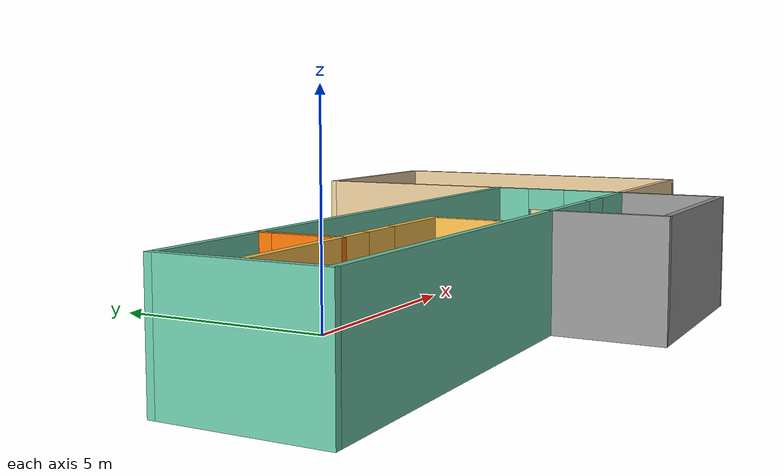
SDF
<?xml version='1.0'?>
<sdf version='1.7'>
  <model name='building'>
    <pose>2.715 -1.21881 0 0 -0 0</pose>
    <link name='Wall_0'>
      <collision name='Wall_0_Collision'>
        <geometry>
          <box>
            <size>3.25 0.15 2.5</size>
          </box>
        </geometry>
        <pose>0 0 1.25 0 -0 0</pose>
      </collision>
      <visual name='Wall_0_Visual'>
        <pose>0 0 1.25 0 -0 0</pose>
        <geometry>
          <box>
            <size>3.25 0.15 2.5</size>
          </box>
        </geometry>
        <material>
          <script>
            <uri>file://media/materials/scripts/gazebo.material</uri>
            <name>Gazebo/Grey</name>
          </script>
          <ambient>0.435294 0.796078 0.67451 1</ambient>
        </material>
        <meta>
          <layer>0</layer>
        </meta>
      </visual>
      <pose>-8.725 -1.21119 0 0 -0 -1.5708</pose>
    </link>
    <link name='Wall_1'>
      <pose>-2.3 -2.76119 0 0 -0 0</pose>
      <visual name='Wall_1_Visual_0'>
        <pose>-1.26149 0 1.25 0 -0 0</pose>
        <geometry>
          <box>
            <size>10.477 0.15 2.5</size>
          </box>
        </geometry>
        <material>
          <script>
            <uri>file://media/materials/scripts/gazebo.material</uri>
            <name>Gazebo/Grey</name>
          </script>
          <ambient>0.435294 0.796078 0.67451 1</ambient>
        </material>
        <meta>
          <layer>0</layer>
        </meta>
      </visual>
      <collision name='Wall_1_Collision_0'>
        <geometry>
          <box>
            <size>10.477 0.15 2.5</size>
          </box>
        </geometry>
        <pose>-1.26149 0 1.25 0 -0 0</pose>
      </collision>
      <visual name='Wall_1_Visual_1'>
        <pose>5.68851 0 1.25 0 -0 0</pose>
        <geometry>
          <box>
            <size>1.62298 0.15 2.5</size>
          </box>
        </geometry>
        <material>
          <script>
            <uri>file://media/materials/scripts/gazebo.material</uri>
            <name>Gazebo/Grey</name>
          </script>
          <ambient>0.435294 0.796078 0.67451 1</ambient>
        </material>
        <meta>
          <layer>0</layer>
        </meta>
      </visual>
      <collision name='Wall_1_Collision_1'>
        <geometry>
          <box>
            <size>1.62298 0.15 2.5</size>
          </box>
        </geometry>
        <pose>5.68851 0 1.25 0 -0 0</pose>
      </collision>
      <visual name='Wall_1_Visual_2'>
        <pose>4.42701 0 2.25 0 -0 0</pose>
        <geometry>
          <box>
            <size>0.9 0.15 0.5</size>
          </box>
        </geometry>
        <material>
          <script>
            <uri>file://media/materials/scripts/gazebo.material</uri>
            <name>Gazebo/Grey</name>
          </script>
          <ambient>0.435294 0.796078 0.67451 1</ambient>
        </material>
        <meta>
          <layer>0</layer>
        </meta>
      </visual>
      <collision name='Wall_1_Collision_2'>
        <geometry>
          <box>
            <size>0.9 0.15 0.5</size>
          </box>
        </geometry>
        <pose>4.42701 0 2.25 0 -0 0</pose>
      </collision>
    </link>
    <link name='Wall_10'>
      <pose>-4.4 -1.26119 0 0 -0 0</pose>
      <visual name='Wall_10_Visual_0'>
        <pose>-1.3125 0 1.25 0 -0 0</pose>
        <geometry>
          <box>
            <size>0.875 0.15 2.5</size>
          </box>
        </geometry>
        <material>
          <script>
            <uri>file://media/materials/scripts/gazebo.material</uri>
            <name>Gazebo/Grey</name>
          </script>
          <ambient>1 0.764706 0.305882 1</ambient>
        </material>
        <meta>
          <layer>0</layer>
        </meta>
      </visual>
      <collision name='Wall_10_Collision_0'>
        <geometry>
          <box>
            <size>0.875 0.15 2.5</size>
          </box>
        </geometry>
        <pose>-1.3125 0 1.25 0 -0 0</pose>
      </collision>
      <visual name='Wall_10_Visual_1'>
        <pose>0.8875 0 1.25 0 -0 0</pose>
        <geometry>
          <box>
            <size>1.725 0.15 2.5</size>
          </box>
        </geometry>
        <material>
          <script>
            <uri>file://media/materials/scripts/gazebo.material</uri>
            <name>Gazebo/Grey</name>
          </script>
          <ambient>1 0.764706 0.305882 1</ambient>
        </material>
        <meta>
          <layer>0</layer>
        </meta>
      </visual>
      <collision name='Wall_10_Collision_1'>
        <geometry>
          <box>
            <size>1.725 0.15 2.5</size>
          </box>
        </geometry>
        <pose>0.8875 0 1.25 0 -0 0</pose>
      </collision>
      <visual name='Wall_10_Visual_2'>
        <pose>-0.425 0 2.25 0 -0 0</pose>
        <geometry>
          <box>
            <size>0.9 0.15 0.5</size>
          </box>
        </geometry>
        <material>
          <script>
            <uri>file://media/materials/scripts/gazebo.material</uri>
            <name>Gazebo/Grey</name>
          </script>
          <ambient>1 0.764706 0.305882 1</ambient>
        </material>
        <meta>
          <layer>0</layer>
        </meta>
      </visual>
      <collision name='Wall_10_Collision_2'>
        <geometry>
          <box>
            <size>0.9 0.15 0.5</size>
          </box>
        </geometry>
        <pose>-0.425 0 2.25 0 -0 0</pose>
      </collision>
    </link>
    <link name='Wall_11'>
      <collision name='Wall_11_Collision'>
        <geometry>
          <box>
            <size>1.5 0.15 2.5</size>
          </box>
        </geometry>
        <pose>0 0 1.25 0 -0 0</pose>
      </collision>
      <visual name='Wall_11_Visual'>
        <pose>0 0 1.25 0 -0 0</pose>
        <geometry>
          <box>
            <size>1.5 0.15 2.5</size>
          </box>
        </geometry>
        <material>
          <script>
            <uri>file://media/materials/scripts/gazebo.material</uri>
            <name>Gazebo/Grey</name>
          </script>
          <ambient>1 0.764706 0.305882 1</ambient>
        </material>
        <meta>
          <layer>0</layer>
        </meta>
      </visual>
      <pose>-2.725 -1.93619 0 0 -0 -1.5708</pose>
    </link>
    <link name='Wall_12'>
      <collision name='Wall_12_Collision'>
        <geometry>
          <box>
            <size>0.15 0.15 2.5</size>
          </box>
        </geometry>
        <pose>0 0 1.25 0 -0 0</pose>
      </collision>
      <visual name='Wall_12_Visual'>
        <pose>0 0 1.25 0 -0 0</pose>
        <geometry>
          <box>
            <size>0.15 0.15 2.5</size>
          </box>
        </geometry>
        <material>
          <script>
            <uri>file://media/materials/scripts/gazebo.material</uri>
            <name>Gazebo/Grey</name>
          </script>
          <ambient>1 1 1 1</ambient>
        </material>
        <meta>
          <layer>0</layer>
        </meta>
      </visual>
      <pose>-2.725 -2.61119 0 0 -0 0</pose>
    </link>
    <link name='Wall_14'>
      <collision name='Wall_14_Collision'>
        <geometry>
          <box>
            <size>2.5 0.15 2.5</size>
          </box>
        </geometry>
        <pose>0 0 1.25 0 -0 0</pose>
      </collision>
      <visual name='Wall_14_Visual'>
        <pose>0 0 1.25 0 -0 0</pose>
        <geometry>
          <box>
            <size>2.5 0.15 2.5</size>
          </box>
        </geometry>
        <material>
          <script>
            <uri>file://media/materials/scripts/gazebo.material</uri>
            <name>Gazebo/Grey</name>
          </script>
          <ambient>1 1 1 1</ambient>
        </material>
        <meta>
          <layer>0</layer>
        </meta>
      </visual>
      <pose>-0.549725 -3.91144 0 0 -0 -1.5708</pose>
    </link>
    <link name='Wall_15'>
      <collision name='Wall_15_Collision'>
        <geometry>
          <box>
            <size>4.75 0.15 2.5</size>
          </box>
        </geometry>
        <pose>0 0 1.25 0 -0 0</pose>
      </collision>
      <visual name='Wall_15_Visual'>
        <pose>0 0 1.25 0 -0 0</pose>
        <geometry>
          <box>
            <size>4.75 0.15 2.5</size>
          </box>
        </geometry>
        <material>
          <script>
            <uri>file://media/materials/scripts/gazebo.material</uri>
            <name>Gazebo/Grey</name>
          </script>
          <ambient>1 1 1 1</ambient>
        </material>
        <meta>
          <layer>0</layer>
        </meta>
      </visual>
      <pose>1.75028 -5.08644 0 0 -0 0</pose>
    </link>
    <link name='Wall_16'>
      <collision name='Wall_16_Collision'>
        <geometry>
          <box>
            <size>2.47645 0.15 2.5</size>
          </box>
        </geometry>
        <pose>0 0 1.25 0 -0 0</pose>
      </collision>
      <visual name='Wall_16_Visual'>
        <pose>0 0 1.25 0 -0 0</pose>
        <geometry>
          <box>
            <size>2.47645 0.15 2.5</size>
          </box>
        </geometry>
        <material>
          <script>
            <uri>file://media/materials/scripts/gazebo.material</uri>
            <name>Gazebo/Grey</name>
          </script>
          <ambient>1 1 1 1</ambient>
        </material>
        <meta>
          <layer>0</layer>
        </meta>
      </visual>
      <pose>4.08764 -3.92381 0 0 -0 1.53867</pose>
    </link>
    <link name='Wall_17'>
      <collision name='Wall_17_Collision'>
        <geometry>
          <box>
            <size>4.75 0.15 2.5</size>
          </box>
        </geometry>
        <pose>0 0 1.25 0 -0 0</pose>
      </collision>
      <visual name='Wall_17_Visual'>
        <pose>0 0 1.25 0 -0 0</pose>
        <geometry>
          <box>
            <size>4.75 0.15 2.5</size>
          </box>
        </geometry>
        <material>
          <script>
            <uri>file://media/materials/scripts/gazebo.material</uri>
            <name>Gazebo/Grey</name>
          </script>
          <ambient>0.921569 0.807843 0.615686 1</ambient>
        </material>
        <meta>
          <layer>0</layer>
        </meta>
      </visual>
      <pose>6.425 -2.76119 0 0 -0 0</pose>
    </link>
    <link name='Wall_18'>
      <collision name='Wall_18_Collision'>
        <geometry>
          <box>
            <size>8 0.15 2.5</size>
          </box>
        </geometry>
        <pose>0 0 1.25 0 -0 0</pose>
      </collision>
      <visual name='Wall_18_Visual'>
        <pose>0 0 1.25 0 -0 0</pose>
        <geometry>
          <box>
            <size>8 0.15 2.5</size>
          </box>
        </geometry>
        <material>
          <script>
            <uri>file://media/materials/scripts/gazebo.material</uri>
            <name>Gazebo/Grey</name>
          </script>
          <ambient>0.921569 0.807843 0.615686 1</ambient>
        </material>
        <meta>
          <layer>0</layer>
        </meta>
      </visual>
      <pose>8.725 1.16381 0 0 -0 1.5708</pose>
    </link>
    <link name='Wall_19'>
      <collision name='Wall_19_Collision'>
        <geometry>
          <box>
            <size>4.75 0.15 2.5</size>
          </box>
        </geometry>
        <pose>0 0 1.25 0 -0 0</pose>
      </collision>
      <visual name='Wall_19_Visual'>
        <pose>0 0 1.25 0 -0 0</pose>
        <geometry>
          <box>
            <size>4.75 0.15 2.5</size>
          </box>
        </geometry>
        <material>
          <script>
            <uri>file://media/materials/scripts/gazebo.material</uri>
            <name>Gazebo/Grey</name>
          </script>
          <ambient>0.921569 0.807843 0.615686 1</ambient>
        </material>
        <meta>
          <layer>0</layer>
        </meta>
      </visual>
      <pose>6.425 5.08881 0 0 -0 3.14159</pose>
    </link>
    <link name='Wall_2'>
      <pose>4.125 -1.21119 0 0 -0 1.5708</pose>
      <visual name='Wall_2_Visual_0'>
        <pose>-0.902806 0 1.25 0 -0 0</pose>
        <geometry>
          <box>
            <size>1.44439 0.15 2.5</size>
          </box>
        </geometry>
        <material>
          <script>
            <uri>file://media/materials/scripts/gazebo.material</uri>
            <name>Gazebo/Grey</name>
          </script>
          <ambient>0.435294 0.796078 0.67451 1</ambient>
        </material>
        <meta>
          <layer>0</layer>
        </meta>
      </visual>
      <collision name='Wall_2_Collision_0'>
        <geometry>
          <box>
            <size>1.44439 0.15 2.5</size>
          </box>
        </geometry>
        <pose>-0.902806 0 1.25 0 -0 0</pose>
      </collision>
      <visual name='Wall_2_Visual_1'>
        <pose>1.17219 0 1.25 0 -0 0</pose>
        <geometry>
          <box>
            <size>0.905613 0.15 2.5</size>
          </box>
        </geometry>
        <material>
          <script>
            <uri>file://media/materials/scripts/gazebo.material</uri>
            <name>Gazebo/Grey</name>
          </script>
          <ambient>0.435294 0.796078 0.67451 1</ambient>
        </material>
        <meta>
          <layer>0</layer>
        </meta>
      </visual>
      <collision name='Wall_2_Collision_1'>
        <geometry>
          <box>
            <size>0.905613 0.15 2.5</size>
          </box>
        </geometry>
        <pose>1.17219 0 1.25 0 -0 0</pose>
      </collision>
      <visual name='Wall_2_Visual_2'>
        <pose>0.269387 0 2.25 0 -0 0</pose>
        <geometry>
          <box>
            <size>0.9 0.15 0.5</size>
          </box>
        </geometry>
        <material>
          <script>
            <uri>file://media/materials/scripts/gazebo.material</uri>
            <name>Gazebo/Grey</name>
          </script>
          <ambient>0.435294 0.796078 0.67451 1</ambient>
        </material>
        <meta>
          <layer>0</layer>
        </meta>
      </visual>
      <collision name='Wall_2_Collision_2'>
        <geometry>
          <box>
            <size>0.9 0.15 0.5</size>
          </box>
        </geometry>
        <pose>0.269387 0 2.25 0 -0 0</pose>
      </collision>
    </link>
    <link name='Wall_20'>
      <collision name='Wall_20_Collision'>
        <geometry>
          <box>
            <size>4.9 0.15 2.5</size>
          </box>
        </geometry>
        <pose>0 0 1.25 0 -0 0</pose>
      </collision>
      <visual name='Wall_20_Visual'>
        <pose>0 0 1.25 0 -0 0</pose>
        <geometry>
          <box>
            <size>4.9 0.15 2.5</size>
          </box>
        </geometry>
        <material>
          <script>
            <uri>file://media/materials/scripts/gazebo.material</uri>
            <name>Gazebo/Grey</name>
          </script>
          <ambient>0.921569 0.807843 0.615686 1</ambient>
        </material>
        <meta>
          <layer>0</layer>
        </meta>
      </visual>
      <pose>4.125 2.71381 0 0 -0 -1.5708</pose>
    </link>
    <link name='Wall_3'>
      <collision name='Wall_3_Collision'>
        <geometry>
          <box>
            <size>13 0.15 2.5</size>
          </box>
        </geometry>
        <pose>0 0 1.25 0 -0 0</pose>
      </collision>
      <visual name='Wall_3_Visual'>
        <pose>0 0 1.25 0 -0 0</pose>
        <geometry>
          <box>
            <size>13 0.15 2.5</size>
          </box>
        </geometry>
        <material>
          <script>
            <uri>file://media/materials/scripts/gazebo.material</uri>
            <name>Gazebo/Grey</name>
          </script>
          <ambient>0.435294 0.796078 0.67451 1</ambient>
        </material>
        <meta>
          <layer>0</layer>
        </meta>
      </visual>
      <pose>-2.3 0.338807 0 0 -0 3.14159</pose>
    </link>
    <link name='Wall_5'>
      <collision name='Wall_5_Collision'>
        <geometry>
          <box>
            <size>2.75 0.15 2.5</size>
          </box>
        </geometry>
        <pose>0 0 1.25 0 -0 0</pose>
      </collision>
      <visual name='Wall_5_Visual'>
        <pose>0 0 1.25 0 -0 0</pose>
        <geometry>
          <box>
            <size>2.75 0.15 2.5</size>
          </box>
        </geometry>
        <material>
          <script>
            <uri>file://media/materials/scripts/gazebo.material</uri>
            <name>Gazebo/Grey</name>
          </script>
          <ambient>1 0.764706 0.305882 1</ambient>
        </material>
        <meta>
          <layer>0</layer>
        </meta>
      </visual>
      <pose>-7.375 -1.26119 0 0 -0 0</pose>
    </link>
    <link name='Wall_6'>
      <pose>-6.075 -0.461193 0 0 -0 1.5708</pose>
      <visual name='Wall_6_Visual_0'>
        <pose>-0.6525 0 1.25 0 -0 0</pose>
        <geometry>
          <box>
            <size>0.445 0.15 2.5</size>
          </box>
        </geometry>
        <material>
          <script>
            <uri>file://media/materials/scripts/gazebo.material</uri>
            <name>Gazebo/Grey</name>
          </script>
          <ambient>0.996078 0.47451 0.0196078 1</ambient>
        </material>
        <meta>
          <layer>0</layer>
        </meta>
      </visual>
      <collision name='Wall_6_Collision_0'>
        <geometry>
          <box>
            <size>0.445 0.15 2.5</size>
          </box>
        </geometry>
        <pose>-0.6525 0 1.25 0 -0 0</pose>
      </collision>
      <visual name='Wall_6_Visual_1'>
        <pose>0.6725 0 1.25 0 -0 0</pose>
        <geometry>
          <box>
            <size>0.405 0.15 2.5</size>
          </box>
        </geometry>
        <material>
          <script>
            <uri>file://media/materials/scripts/gazebo.material</uri>
            <name>Gazebo/Grey</name>
          </script>
          <ambient>0.996078 0.47451 0.0196078 1</ambient>
        </material>
        <meta>
          <layer>0</layer>
        </meta>
      </visual>
      <collision name='Wall_6_Collision_1'>
        <geometry>
          <box>
            <size>0.405 0.15 2.5</size>
          </box>
        </geometry>
        <pose>0.6725 0 1.25 0 -0 0</pose>
      </collision>
      <visual name='Wall_6_Visual_2'>
        <pose>0.02 0 2.25 0 -0 0</pose>
        <geometry>
          <box>
            <size>0.9 0.15 0.5</size>
          </box>
        </geometry>
        <material>
          <script>
            <uri>file://media/materials/scripts/gazebo.material</uri>
            <name>Gazebo/Grey</name>
          </script>
          <ambient>0.996078 0.47451 0.0196078 1</ambient>
        </material>
        <meta>
          <layer>0</layer>
        </meta>
      </visual>
      <collision name='Wall_6_Collision_2'>
        <geometry>
          <box>
            <size>0.9 0.15 0.5</size>
          </box>
        </geometry>
        <pose>0.02 0 2.25 0 -0 0</pose>
      </collision>
    </link>
    <static>1</static>
  </model>
</sdf>
